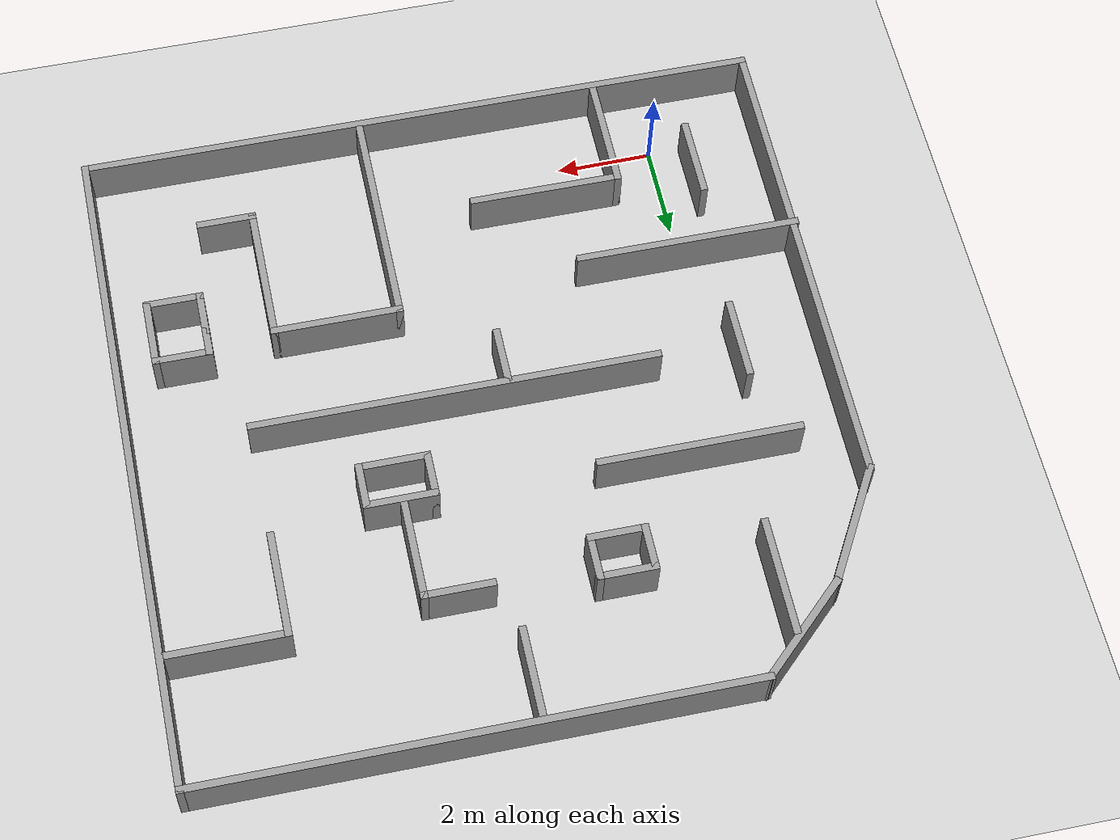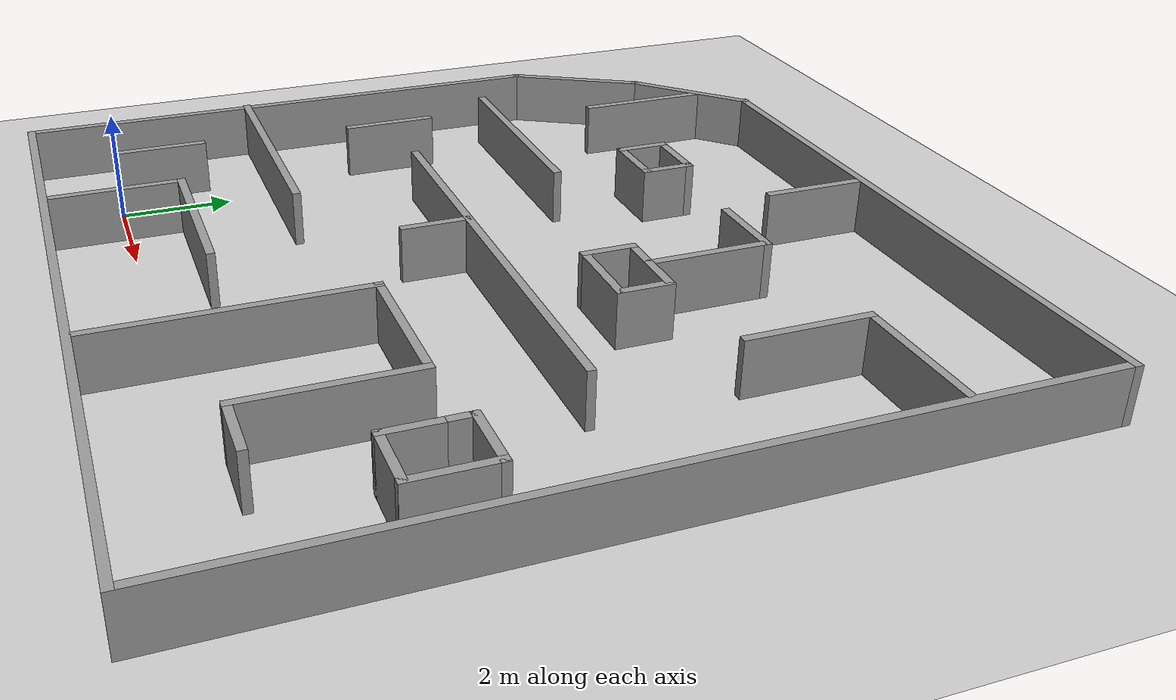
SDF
<sdf version="1.7">
 <world name="default">
  <light name="sun" type="directional">
   <pose>0 0 10 0 -0 0</pose>
   <diffuse>0.8 0.8 0.8 1</diffuse>
   <specular>0.2 0.2 0.2 1</specular>
   <attenuation>
    <range>1000</range>
    <constant>0.9</constant>
    <linear>0.01</linear>
    <quadratic>0.001</quadratic>
   </attenuation>
   <direction>-0.5 0.1 -0.9</direction>
   <spot><inner_angle>0</inner_angle><outer_angle>0</outer_angle><falloff>0</falloff></spot>
  </light>
  <model name="ground_plane">
   <static>1</static>
   <link name="link">
    <collision name="collision">
     <geometry><plane><normal>0 0 1</normal><size>100 100</size></plane></geometry>
     <surface>
      <contact><collide_bitmask>65535</collide_bitmask></contact>
      <friction><ode><mu>100</mu><mu2>50</mu2></ode></friction>
     </surface>
    </collision>
    <visual name="visual">
     <cast_shadows>0</cast_shadows>
     <geometry><plane><normal>0 0 1</normal><size>100 100</size></plane></geometry>
     <material>
      <script><uri>file://media/materials/scripts/gazebo.material</uri><name>Gazebo/Grey</name></script>
     </material>
    </visual>
   </link>
  </model>
  <gravity>0 0 -9.8</gravity>
  <magnetic_field>6e-06 2.3e-05 -4.2e-05</magnetic_field>
  <atmosphere type="adiabatic"/>
  <physics type="ode">
   <max_step_size>0.001</max_step_size>
   <real_time_factor>1</real_time_factor>
   <real_time_update_rate>1000</real_time_update_rate>
  </physics>
  <scene><ambient>0.4 0.4 0.4 1</ambient><background>0.7 0.7 0.7 1</background><shadows>1</shadows></scene>
  <audio><device>default</device></audio>
  <spherical_coordinates>
   <surface_model>EARTH_WGS84</surface_model>
   <latitude_deg>0</latitude_deg>
   <longitude_deg>0</longitude_deg>
   <elevation>0</elevation>
   <heading_deg>0</heading_deg>
  </spherical_coordinates>
  <model name="maailm5">
   <pose>4.79822 5.66425 0 0 -0 0</pose>
   <link name="Wall_22">
    <collision name="Wall_22_Collision">
     <geometry><box><size>14.5 0.15 1</size></box></geometry>
     <pose>0 0 0.5 0 -0 0</pose>
    </collision>
    <visual name="Wall_22_Visual">
     <pose>0 0 0.5 0 -0 0</pose>
     <geometry><box><size>14.5 0.15 1</size></box></geometry>
     <material>
      <script><uri>file://media/materials/scripts/gazebo.material</uri><name>Gazebo/Grey</name></script>
      <ambient>1 1 1 1</ambient>
     </material>
     <meta><layer>0</layer></meta>
    </visual>
    <pose>0.0175 -7.06526 0 0 -0 0</pose>
   </link>
   <link name="Wall_23">
    <collision name="Wall_23_Collision">
     <geometry><box><size>14.25 0.15 1</size></box></geometry>
     <pose>0 0 0.5 0 -0 0</pose>
    </collision>
    <visual name="Wall_23_Visual">
     <pose>0 0 0.5 0 -0 0</pose>
     <geometry><box><size>14.25 0.15 1</size></box></geometry>
     <material>
      <script><uri>file://media/materials/scripts/gazebo.material</uri><name>Gazebo/Grey</name></script>
      <ambient>1 1 1 1</ambient>
     </material>
     <meta><layer>0</layer></meta>
    </visual>
    <pose>7.1925 -0.015262 0 0 -0 1.5708</pose>
   </link>
   <link name="Wall_24">
    <collision name="Wall_24_Collision">
     <geometry><box><size>11.4 0.15 1</size></box></geometry>
     <pose>0 0 0.5 0 -0 0</pose>
    </collision>
    <visual name="Wall_24_Visual">
     <pose>0 0 0.5 0 -0 0</pose>
     <geometry><box><size>11.4 0.15 1</size></box></geometry>
     <material>
      <script><uri>file://media/materials/scripts/gazebo.material</uri><name>Gazebo/Grey</name></script>
      <ambient>1 1 1 1</ambient>
     </material>
     <meta><layer>0</layer></meta>
    </visual>
    <pose>1.5675 7.03474 0 0 -0 3.14159</pose>
   </link>
   <link name="Wall_25">
    <collision name="Wall_25_Collision">
     <geometry><box><size>2.57174 0.15 1</size></box></geometry>
     <pose>0 0 0.5 0 -0 0</pose>
    </collision>
    <visual name="Wall_25_Visual">
     <pose>0 0 0.5 0 -0 0</pose>
     <geometry><box><size>2.57174 0.15 1</size></box></geometry>
     <material>
      <script><uri>file://media/materials/scripts/gazebo.material</uri><name>Gazebo/Grey</name></script>
      <ambient>1 1 1 1</ambient>
     </material>
     <meta><layer>0</layer></meta>
    </visual>
    <pose>-4.938 6.20374 0 0 -0 -2.38511</pose>
   </link>
   <link name="Wall_26">
    <collision name="Wall_26_Collision">
     <geometry><box><size>2.75 0.15 1</size></box></geometry>
     <pose>0 0 0.5 0 -0 0</pose>
    </collision>
    <visual name="Wall_26_Visual">
     <pose>0 0 0.5 0 -0 0</pose>
     <geometry><box><size>2.75 0.15 1</size></box></geometry>
     <material>
      <script><uri>file://media/materials/scripts/gazebo.material</uri><name>Gazebo/Grey</name></script>
      <ambient>1 1 1 1</ambient>
     </material>
     <meta><layer>0</layer></meta>
    </visual>
    <pose>-6.4685 4.24674 0 0 -0 -2.09433</pose>
   </link>
   <link name="Wall_27">
    <collision name="Wall_27_Collision">
     <geometry><box><size>10.3367 0.15 1</size></box></geometry>
     <pose>0 0 0.5 0 -0 0</pose>
    </collision>
    <visual name="Wall_27_Visual">
     <pose>0 0 0.5 0 -0 0</pose>
     <geometry><box><size>10.3367 0.15 1</size></box></geometry>
     <material>
      <script><uri>file://media/materials/scripts/gazebo.material</uri><name>Gazebo/Grey</name></script>
      <ambient>1 1 1 1</ambient>
     </material>
     <meta><layer>0</layer></meta>
    </visual>
    <pose>-7.138 -1.97226 0 0 -0 -1.57462</pose>
   </link>
   <link name="Wall_30">
    <collision name="Wall_30_Collision">
     <geometry><box><size>2.5 0.15 1</size></box></geometry>
     <pose>0 0 0.5 0 -0 0</pose>
    </collision>
    <visual name="Wall_30_Visual">
     <pose>0 0 0.5 0 -0 0</pose>
     <geometry><box><size>2.5 0.15 1</size></box></geometry>
     <material>
      <script><uri>file://media/materials/scripts/gazebo.material</uri><name>Gazebo/Grey</name></script>
      <ambient>1 1 1 1</ambient>
     </material>
     <meta><layer>0</layer></meta>
    </visual>
    <pose>-3.8135 -5.80726 0 0 -0 1.5708</pose>
   </link>
   <link name="Wall_31">
    <collision name="Wall_31_Collision">
     <geometry><box><size>3.25 0.15 1</size></box></geometry>
     <pose>0 0 0.5 0 -0 0</pose>
    </collision>
    <visual name="Wall_31_Visual">
     <pose>0 0 0.5 0 -0 0</pose>
     <geometry><box><size>3.25 0.15 1</size></box></geometry>
     <material>
      <script><uri>file://media/materials/scripts/gazebo.material</uri><name>Gazebo/Grey</name></script>
      <ambient>1 1 1 1</ambient>
     </material>
     <meta><layer>0</layer></meta>
    </visual>
    <pose>-2.2635 -4.63226 0 0 -0 0</pose>
   </link>
   <link name="Wall_33">
    <collision name="Wall_33_Collision">
     <geometry><box><size>8.5 0.15 1</size></box></geometry>
     <pose>0 0 0.5 0 -0 0</pose>
    </collision>
    <visual name="Wall_33_Visual">
     <pose>0 0 0.5 0 -0 0</pose>
     <geometry><box><size>8.5 0.15 1</size></box></geometry>
     <material>
      <script><uri>file://media/materials/scripts/gazebo.material</uri><name>Gazebo/Grey</name></script>
      <ambient>1 1 1 1</ambient>
     </material>
     <meta><layer>0</layer></meta>
    </visual>
    <pose>0.5475 -0.236262 0 0 -0 0</pose>
   </link>
   <link name="Wall_36">
    <collision name="Wall_36_Collision">
     <geometry><box><size>1 0.15 1</size></box></geometry>
     <pose>0 0 0.5 0 -0 0</pose>
    </collision>
    <visual name="Wall_36_Visual">
     <pose>0 0 0.5 0 -0 0</pose>
     <geometry><box><size>1 0.15 1</size></box></geometry>
     <material>
      <script><uri>file://media/materials/scripts/gazebo.material</uri><name>Gazebo/Grey</name></script>
      <ambient>1 1 1 1</ambient>
     </material>
     <meta><layer>0</layer></meta>
    </visual>
    <pose>-2.4645 3.94474 0 0 -0 -1.5708</pose>
   </link>
   <link name="Wall_37">
    <collision name="Wall_37_Collision">
     <geometry><box><size>1.25 0.15 1</size></box></geometry>
     <pose>0 0 0.5 0 -0 0</pose>
    </collision>
    <visual name="Wall_37_Visual">
     <pose>0 0 0.5 0 -0 0</pose>
     <geometry><box><size>1.25 0.15 1</size></box></geometry>
     <material>
      <script><uri>file://media/materials/scripts/gazebo.material</uri><name>Gazebo/Grey</name></script>
      <ambient>1 1 1 1</ambient>
     </material>
     <meta><layer>0</layer></meta>
    </visual>
    <pose>-1.9145 3.51974 0 0 -0 0</pose>
   </link>
   <link name="Wall_38">
    <collision name="Wall_38_Collision">
     <geometry><box><size>1 0.15 1</size></box></geometry>
     <pose>0 0 0.5 0 -0 0</pose>
    </collision>
    <visual name="Wall_38_Visual">
     <pose>0 0 0.5 0 -0 0</pose>
     <geometry><box><size>1 0.15 1</size></box></geometry>
     <material>
      <script><uri>file://media/materials/scripts/gazebo.material</uri><name>Gazebo/Grey</name></script>
      <ambient>1 1 1 1</ambient>
     </material>
     <meta><layer>0</layer></meta>
    </visual>
    <pose>-1.3645 3.94474 0 0 -0 1.5708</pose>
   </link>
   <link name="Wall_39">
    <collision name="Wall_39_Collision">
     <geometry><box><size>1.25 0.15 1</size></box></geometry>
     <pose>0 0 0.5 0 -0 0</pose>
    </collision>
    <visual name="Wall_39_Visual">
     <pose>0 0 0.5 0 -0 0</pose>
     <geometry><box><size>1.25 0.15 1</size></box></geometry>
     <material>
      <script><uri>file://media/materials/scripts/gazebo.material</uri><name>Gazebo/Grey</name></script>
      <ambient>1 1 1 1</ambient>
     </material>
     <meta><layer>0</layer></meta>
    </visual>
    <pose>-1.9145 4.36974 0 0 -0 3.14159</pose>
   </link>
   <link name="Wall_41">
    <collision name="Wall_41_Collision">
     <geometry><box><size>1 0.15 1</size></box></geometry>
     <pose>0 0 0.5 0 -0 0</pose>
    </collision>
    <visual name="Wall_41_Visual">
     <pose>0 0 0.5 0 -0 0</pose>
     <geometry><box><size>1 0.15 1</size></box></geometry>
     <material>
      <script><uri>file://media/materials/scripts/gazebo.material</uri><name>Gazebo/Grey</name></script>
      <ambient>1 1 1 1</ambient>
     </material>
     <meta><layer>0</layer></meta>
    </visual>
    <pose>1.3935 1.53174 0 0 -0 1.5708</pose>
   </link>
   <link name="Wall_42">
    <collision name="Wall_42_Collision">
     <geometry><box><size>1.531 0.15 1</size></box></geometry>
     <pose>0 0 0.5 0 -0 0</pose>
    </collision>
    <visual name="Wall_42_Visual">
     <pose>0 0 0.5 0 -0 0</pose>
     <geometry><box><size>1.531 0.15 1</size></box></geometry>
     <material>
      <script><uri>file://media/materials/scripts/gazebo.material</uri><name>Gazebo/Grey</name></script>
      <ambient>1 1 1 1</ambient>
     </material>
     <meta><layer>0</layer></meta>
    </visual>
    <pose>2.084 1.95674 0 0 -0 0</pose>
   </link>
   <link name="Wall_43">
    <collision name="Wall_43_Collision">
     <geometry><box><size>1 0.15 1</size></box></geometry>
     <pose>0 0 0.5 0 -0 0</pose>
    </collision>
    <visual name="Wall_43_Visual">
     <pose>0 0 0.5 0 -0 0</pose>
     <geometry><box><size>1 0.15 1</size></box></geometry>
     <material>
      <script><uri>file://media/materials/scripts/gazebo.material</uri><name>Gazebo/Grey</name></script>
      <ambient>1 1 1 1</ambient>
     </material>
     <meta><layer>0</layer></meta>
    </visual>
    <pose>2.7745 1.53174 0 0 -0 -1.5708</pose>
   </link>
   <link name="Wall_44">
    <collision name="Wall_44_Collision">
     <geometry><box><size>1.53069 0.15 1</size></box></geometry>
     <pose>0 0 0.5 0 -0 0</pose>
    </collision>
    <visual name="Wall_44_Visual">
     <pose>0 0 0.5 0 -0 0</pose>
     <geometry><box><size>1.53069 0.15 1</size></box></geometry>
     <material>
      <script><uri>file://media/materials/scripts/gazebo.material</uri><name>Gazebo/Grey</name></script>
      <ambient>1 1 1 1</ambient>
     </material>
     <meta><layer>0</layer></meta>
    </visual>
    <pose>2.084 1.10674 0 0 -0 3.14159</pose>
   </link>
   <link name="Wall_46">
    <collision name="Wall_46_Collision">
     <geometry><box><size>4.75 0.15 1</size></box></geometry>
     <pose>0 0 0.5 0 -0 0</pose>
    </collision>
    <visual name="Wall_46_Visual">
     <pose>0 0 0.5 0 -0 0</pose>
     <geometry><box><size>4.75 0.15 1</size></box></geometry>
     <material>
      <script><uri>file://media/materials/scripts/gazebo.material</uri><name>Gazebo/Grey</name></script>
      <ambient>1 1 1 1</ambient>
     </material>
     <meta><layer>0</layer></meta>
    </visual>
    <pose>1.3085 -4.63126 0 0 -0 1.5708</pose>
   </link>
   <link name="Wall_47">
    <collision name="Wall_47_Collision">
     <geometry><box><size>2.75 0.15 1</size></box></geometry>
     <pose>0 0 0.5 0 -0 0</pose>
    </collision>
    <visual name="Wall_47_Visual">
     <pose>0 0 0.5 0 -0 0</pose>
     <geometry><box><size>2.75 0.15 1</size></box></geometry>
     <material>
      <script><uri>file://media/materials/scripts/gazebo.material</uri><name>Gazebo/Grey</name></script>
      <ambient>1 1 1 1</ambient>
     </material>
     <meta><layer>0</layer></meta>
    </visual>
    <pose>2.6085 -2.33126 0 0 -0 0</pose>
   </link>
   <link name="Wall_48">
    <collision name="Wall_48_Collision">
     <geometry><box><size>3 0.15 1</size></box></geometry>
     <pose>0 0 0.5 0 -0 0</pose>
    </collision>
    <visual name="Wall_48_Visual">
     <pose>0 0 0.5 0 -0 0</pose>
     <geometry><box><size>3 0.15 1</size></box></geometry>
     <material>
      <script><uri>file://media/materials/scripts/gazebo.material</uri><name>Gazebo/Grey</name></script>
      <ambient>1 1 1 1</ambient>
     </material>
     <meta><layer>0</layer></meta>
    </visual>
    <pose>3.9085 -3.75626 0 0 -0 -1.5708</pose>
   </link>
   <link name="Wall_49">
    <collision name="Wall_49_Collision">
     <geometry><box><size>1.25 0.15 1</size></box></geometry>
     <pose>0 0 0.5 0 -0 0</pose>
    </collision>
    <visual name="Wall_49_Visual">
     <pose>0 0 0.5 0 -0 0</pose>
     <geometry><box><size>1.25 0.15 1</size></box></geometry>
     <material>
      <script><uri>file://media/materials/scripts/gazebo.material</uri><name>Gazebo/Grey</name></script>
      <ambient>1 1 1 1</ambient>
     </material>
     <meta><layer>0</layer></meta>
    </visual>
    <pose>4.4585 -5.18126 0 0 -0 0</pose>
   </link>
   <link name="Wall_51">
    <collision name="Wall_51_Collision">
     <geometry><box><size>1 0.15 1</size></box></geometry>
     <pose>0 0 0.5 0 -0 0</pose>
    </collision>
    <visual name="Wall_51_Visual">
     <pose>0 0 0.5 0 -0 0</pose>
     <geometry><box><size>1 0.15 1</size></box></geometry>
     <material>
      <script><uri>file://media/materials/scripts/gazebo.material</uri><name>Gazebo/Grey</name></script>
      <ambient>1 1 1 1</ambient>
     </material>
     <meta><layer>0</layer></meta>
    </visual>
    <pose>5.2735 -3.02726 0 0 -0 -1.5708</pose>
   </link>
   <link name="Wall_52">
    <collision name="Wall_52_Collision">
     <geometry><box><size>1.25 0.15 1</size></box></geometry>
     <pose>0 0 0.5 0 -0 0</pose>
    </collision>
    <visual name="Wall_52_Visual">
     <pose>0 0 0.5 0 -0 0</pose>
     <geometry><box><size>1.25 0.15 1</size></box></geometry>
     <material>
      <script><uri>file://media/materials/scripts/gazebo.material</uri><name>Gazebo/Grey</name></script>
      <ambient>1 1 1 1</ambient>
     </material>
     <meta><layer>0</layer></meta>
    </visual>
    <pose>5.8235 -3.45226 0 0 -0 0</pose>
   </link>
   <link name="Wall_53">
    <collision name="Wall_53_Collision">
     <geometry><box><size>1.5 0.15 1</size></box></geometry>
     <pose>0 0 0.5 0 -0 0</pose>
    </collision>
    <visual name="Wall_53_Visual">
     <pose>0 0 0.5 0 -0 0</pose>
     <geometry><box><size>1.5 0.15 1</size></box></geometry>
     <material>
      <script><uri>file://media/materials/scripts/gazebo.material</uri><name>Gazebo/Grey</name></script>
      <ambient>1 1 1 1</ambient>
     </material>
     <meta><layer>0</layer></meta>
    </visual>
    <pose>6.3735 -2.77726 0 0 -0 1.5708</pose>
   </link>
   <link name="Wall_54">
    <collision name="Wall_54_Collision">
     <geometry><box><size>1.25 0.15 1</size></box></geometry>
     <pose>0 0 0.5 0 -0 0</pose>
    </collision>
    <visual name="Wall_54_Visual">
     <pose>0 0 0.5 0 -0 0</pose>
     <geometry><box><size>1.25 0.15 1</size></box></geometry>
     <material>
      <script><uri>file://media/materials/scripts/gazebo.material</uri><name>Gazebo/Grey</name></script>
      <ambient>1 1 1 1</ambient>
     </material>
     <meta><layer>0</layer></meta>
    </visual>
    <pose>5.8235 -2.10226 0 0 -0 3.14159</pose>
   </link>
   <link name="Wall_55">
    <collision name="Wall_55_Collision">
     <geometry><box><size>0.65 0.15 1</size></box></geometry>
     <pose>0 0 0.5 0 -0 0</pose>
    </collision>
    <visual name="Wall_55_Visual">
     <pose>0 0 0.5 0 -0 0</pose>
     <geometry><box><size>0.65 0.15 1</size></box></geometry>
     <material>
      <script><uri>file://media/materials/scripts/gazebo.material</uri><name>Gazebo/Grey</name></script>
      <ambient>1 1 1 1</ambient>
     </material>
     <meta><layer>0</layer></meta>
    </visual>
    <pose>5.2735 -2.35226 0 0 -0 -1.5708</pose>
   </link>
   <link name="Wall_57">
    <collision name="Wall_57_Collision">
     <geometry><box><size>4.75 0.15 1</size></box></geometry>
     <pose>0 0 0.5 0 -0 0</pose>
    </collision>
    <visual name="Wall_57_Visual">
     <pose>0 0 0.5 0 -0 0</pose>
     <geometry><box><size>4.75 0.15 1</size></box></geometry>
     <material>
      <script><uri>file://media/materials/scripts/gazebo.material</uri><name>Gazebo/Grey</name></script>
      <ambient>1 1 1 1</ambient>
     </material>
     <meta><layer>0</layer></meta>
    </visual>
    <pose>-4.8925 -2.79126 0 0 -0 0</pose>
   </link>
   <link name="Wall_59">
    <collision name="Wall_59_Collision">
     <geometry><box><size>4.25 0.15 1</size></box></geometry>
     <pose>0 0 0.5 0 -0 0</pose>
    </collision>
    <visual name="Wall_59_Visual">
     <pose>0 0 0.5 0 -0 0</pose>
     <geometry><box><size>4.25 0.15 1</size></box></geometry>
     <material>
      <script><uri>file://media/materials/scripts/gazebo.material</uri><name>Gazebo/Grey</name></script>
      <ambient>1 1 1 1</ambient>
     </material>
     <meta><layer>0</layer></meta>
    </visual>
    <pose>-3.9695 1.94274 0 0 -0 0</pose>
   </link>
   <link name="Wall_61">
    <collision name="Wall_61_Collision">
     <geometry><box><size>2 0.15 1</size></box></geometry>
     <pose>0 0 0.5 0 -0 0</pose>
    </collision>
    <visual name="Wall_61_Visual">
     <pose>0 0 0.5 0 -0 0</pose>
     <geometry><box><size>2 0.15 1</size></box></geometry>
     <material>
      <script><uri>file://media/materials/scripts/gazebo.material</uri><name>Gazebo/Grey</name></script>
      <ambient>1 1 1 1</ambient>
     </material>
     <meta><layer>0</layer></meta>
    </visual>
    <pose>0.3255 6.08874 0 0 -0 -1.5708</pose>
   </link>
   <link name="Wall_63">
    <collision name="Wall_63_Collision">
     <geometry><box><size>2.5 0.15 1</size></box></geometry>
     <pose>0 0 0.5 0 -0 0</pose>
    </collision>
    <visual name="Wall_63_Visual">
     <pose>0 0 0.5 0 -0 0</pose>
     <geometry><box><size>2.5 0.15 1</size></box></geometry>
     <material>
      <script><uri>file://media/materials/scripts/gazebo.material</uri><name>Gazebo/Grey</name></script>
      <ambient>1 1 1 1</ambient>
     </material>
     <meta><layer>0</layer></meta>
    </visual>
    <pose>5.8915 4.33874 0 0 -0 3.14159</pose>
   </link>
   <link name="Wall_64">
    <collision name="Wall_64_Collision">
     <geometry><box><size>2.25 0.15 1</size></box></geometry>
     <pose>0 0 0.5 0 -0 0</pose>
    </collision>
    <visual name="Wall_64_Visual">
     <pose>0 0 0.5 0 -0 0</pose>
     <geometry><box><size>2.25 0.15 1</size></box></geometry>
     <material>
      <script><uri>file://media/materials/scripts/gazebo.material</uri><name>Gazebo/Grey</name></script>
      <ambient>1 1 1 1</ambient>
     </material>
     <meta><layer>0</layer></meta>
    </visual>
    <pose>4.7165 3.28874 0 0 -0 -1.5708</pose>
   </link>
   <link name="Wall_66">
    <collision name="Wall_66_Collision">
     <geometry><box><size>2.25 0.15 1</size></box></geometry>
     <pose>0 0 0.5 0 -0 0</pose>
    </collision>
    <visual name="Wall_66_Visual">
     <pose>0 0 0.5 0 -0 0</pose>
     <geometry><box><size>2.25 0.15 1</size></box></geometry>
     <material>
      <script><uri>file://media/materials/scripts/gazebo.material</uri><name>Gazebo/Grey</name></script>
      <ambient>1 1 1 1</ambient>
     </material>
     <meta><layer>0</layer></meta>
    </visual>
    <pose>2.0375 3.03474 0 0 -0 1.5708</pose>
   </link>
   <link name="Wall_67">
    <collision name="Wall_67_Collision">
     <geometry><box><size>1.5 0.15 1</size></box></geometry>
     <pose>0 0 0.5 0 -0 0</pose>
    </collision>
    <visual name="Wall_67_Visual">
     <pose>0 0 0.5 0 -0 0</pose>
     <geometry><box><size>1.5 0.15 1</size></box></geometry>
     <material>
      <script><uri>file://media/materials/scripts/gazebo.material</uri><name>Gazebo/Grey</name></script>
      <ambient>1 1 1 1</ambient>
     </material>
     <meta><layer>0</layer></meta>
    </visual>
    <pose>1.3625 4.08474 0 0 -0 3.14159</pose>
   </link>
   <link name="Wall_69">
    <collision name="Wall_69_Collision">
     <geometry><box><size>1.25 0.15 1</size></box></geometry>
     <pose>0 0 0.5 0 -0 0</pose>
    </collision>
    <visual name="Wall_69_Visual">
     <pose>0 0 0.5 0 -0 0</pose>
     <geometry><box><size>1.25 0.15 1</size></box></geometry>
     <material>
      <script><uri>file://media/materials/scripts/gazebo.material</uri><name>Gazebo/Grey</name></script>
      <ambient>1 1 1 1</ambient>
     </material>
     <meta><layer>0</layer></meta>
    </visual>
    <pose>-0.530501 -0.836262 0 0 -0 1.5708</pose>
   </link>
   <link name="Wall_71">
    <collision name="Wall_71_Collision">
     <geometry><box><size>1.75 0.15 1</size></box></geometry>
     <pose>0 0 0.5 0 -0 0</pose>
    </collision>
    <visual name="Wall_71_Visual">
     <pose>0 0 0.5 0 -0 0</pose>
     <geometry><box><size>1.75 0.15 1</size></box></geometry>
     <material>
      <script><uri>file://media/materials/scripts/gazebo.material</uri><name>Gazebo/Grey</name></script>
      <ambient>1 1 1 1</ambient>
     </material>
     <meta><layer>0</layer></meta>
    </visual>
    <pose>-5.5315 -4.80126 0 0 -0 1.5708</pose>
   </link>
   <link name="Wall_73">
    <collision name="Wall_73_Collision">
     <geometry><box><size>2.5 0.15 1</size></box></geometry>
     <pose>0 0 0.5 0 -0 0</pose>
    </collision>
    <visual name="Wall_73_Visual">
     <pose>0 0 0.5 0 -0 0</pose>
     <geometry><box><size>2.5 0.15 1</size></box></geometry>
     <material>
      <script><uri>file://media/materials/scripts/gazebo.material</uri><name>Gazebo/Grey</name></script>
      <ambient>1 1 1 1</ambient>
     </material>
     <meta><layer>0</layer></meta>
    </visual>
    <pose>-4.7825 5.04774 0 0 -0 -1.5708</pose>
   </link>
   <link name="Wall_75">
    <collision name="Wall_75_Collision">
     <geometry><box><size>1.75 0.15 1</size></box></geometry>
     <pose>0 0 0.5 0 -0 0</pose>
    </collision>
    <visual name="Wall_75_Visual">
     <pose>0 0 0.5 0 -0 0</pose>
     <geometry><box><size>1.75 0.15 1</size></box></geometry>
     <material>
      <script><uri>file://media/materials/scripts/gazebo.material</uri><name>Gazebo/Grey</name></script>
      <ambient>1 1 1 1</ambient>
     </material>
     <meta><layer>0</layer></meta>
    </visual>
    <pose>-5.3435 -0.275262 0 0 -0 -1.5708</pose>
   </link>
   <static>1</static>
  </model>
 </world>
</sdf>
